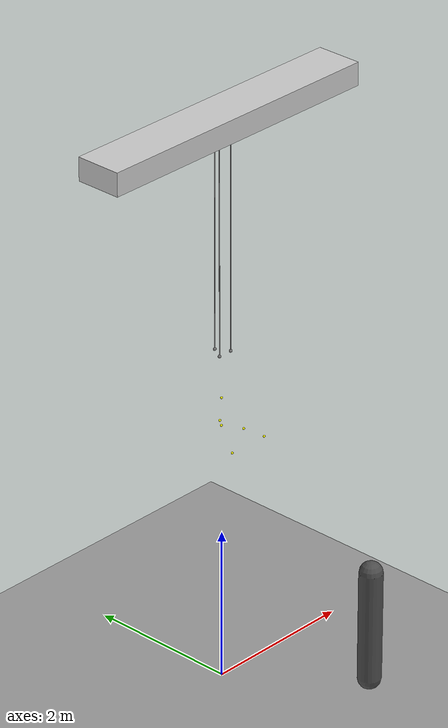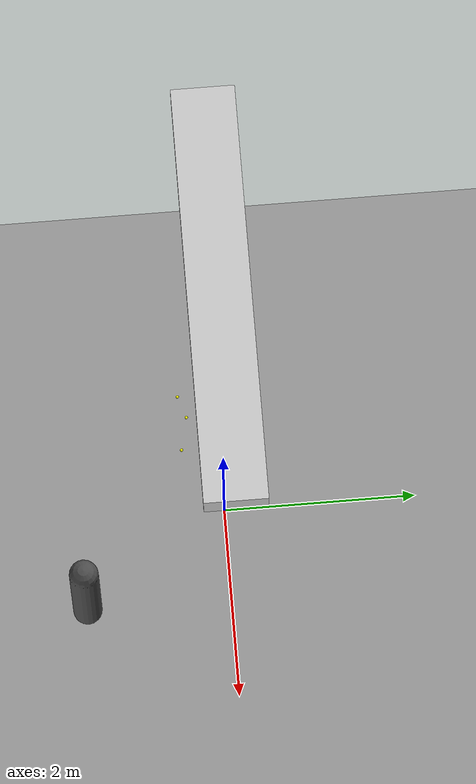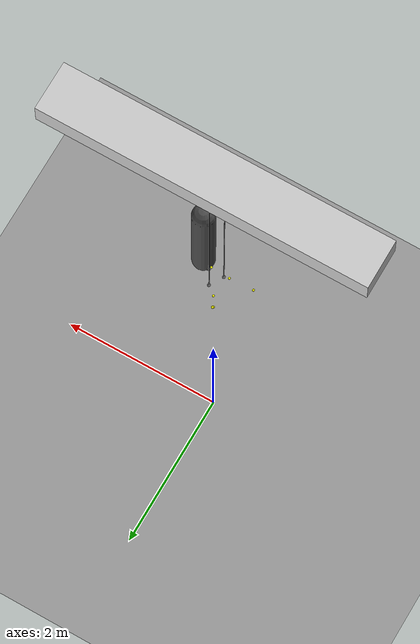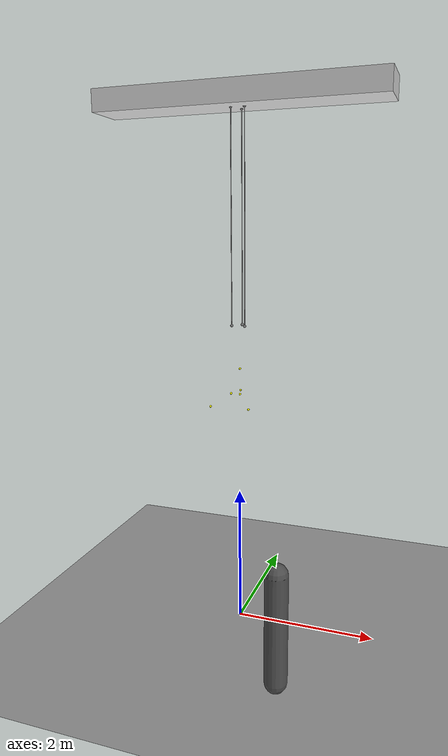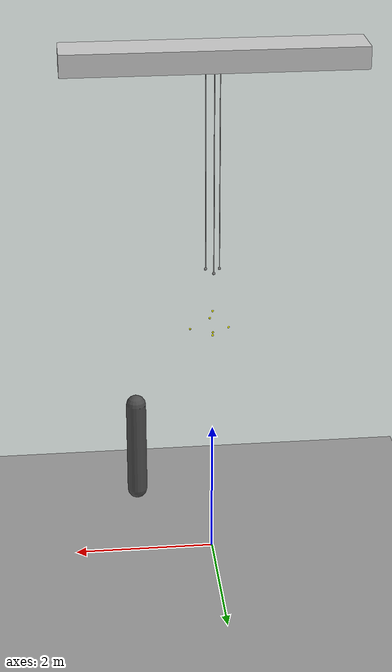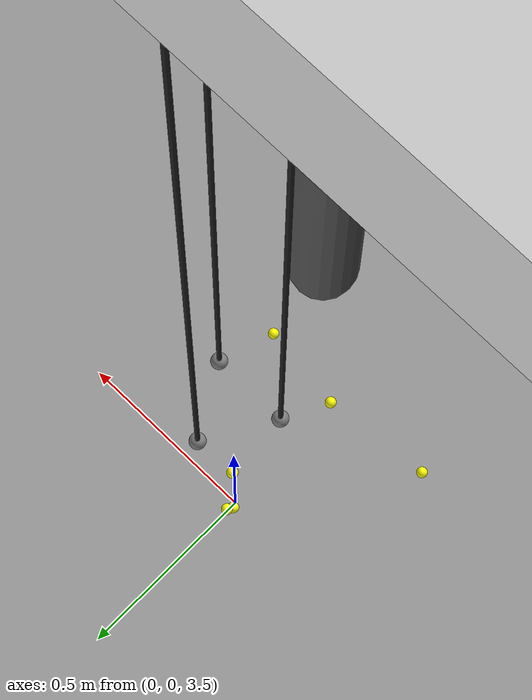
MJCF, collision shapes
<mujoco model="floating_head_1800_wires_R011">
  <compiler angle="radian" meshdir="meshes"/>
  <option timestep="0.0002" gravity="0 0 -9.81" integrator="implicitfast"/>
  <visual><global offwidth="1280" offheight="960"/></visual>
  <asset><mesh name="m_base_0" file="base_0.stl"/><mesh name="m_yaw_0" file="yaw_0.stl"/><mesh name="m_pitch_0" file="pitch_0.stl"/><mesh name="m_eye_pitch_0" file="eye_pitch_0.stl"/><mesh name="m_eye_yaw_l_0" file="eye_yaw_l_0.stl"/><mesh name="m_eye_yaw_r_0" file="eye_yaw_r_0.stl"/></asset>
  <default><geom contype="0" conaffinity="0" density="0"/></default>
  <worldbody>
    <light pos="0 -3 9" dir="0 0.3 -1"/>
    <geom name="floor" type="plane" size="6 6 0.1" rgba="0.6 0.6 0.6 1"/>
    <geom name="beam" type="box" pos="0 0 7.4460" size="2 0.3 0.15" rgba="0.8 0.8 0.8 1"/>
    <geom name="human" type="capsule" fromto="1.0 -1.5 0.15 1.0 -1.5 1.62" size="0.15" rgba="0.3 0.3 0.3 1"/>
    <site name="ceil0" pos="6.73556e-18 0.11 7.296" size="0.02"/>
    <site name="ceil1" pos="-0.0952628 -0.055 7.296" size="0.02"/>
    <site name="ceil2" pos="0.0952628 -0.055 7.296" size="0.02"/>
    <body name="base" pos="0 0 3.2834">
      <inertial pos="0.00192465 0.00416315 0.553989" mass="26.2499" fullinertia="2.05697 2.09189 0.202685 0.000150812 -0.000487465 0.0266854"/>
      <freejoint name="suspension"/>
      <site name="plate0" pos="6.73556e-18 0.11 1.1658" size="0.02"/>
      <site name="plate1" pos="-0.0952628 -0.055 1.1658" size="0.02"/>
      <site name="plate2" pos="0.0952628 -0.055 1.1658" size="0.02"/>
      <geom type="mesh" mesh="m_base_0" rgba="0.4 0.4 0.45 1"/>
      <site name="com_base" pos="0.00192465 0.00416315 0.553989" size="0.015" rgba="1 1 0 1"/>
      <body name="yaw" pos="0 0 0">
        <inertial pos="0.00045566 0.00656782 0.182508" mass="20.7242" fullinertia="0.381776 0.637848 0.344314 -5.87744e-05 -0.00118726 0.031012"/>
        <joint name="neck_yaw" type="hinge" pos="0 0 0.3103" axis="0 0 1" armature="1.06" damping="2" frictionloss="3"/>
        <geom type="mesh" mesh="m_yaw_0" rgba="0.2 0.45 0.85 1"/>
        <site name="com_yaw" pos="0.00045566 0.00656782 0.182508" size="0.015" rgba="1 1 0 1"/>
        <body name="pitch" pos="0 0 0">
          <inertial pos="-0.000346111 0.0305664 0.239522" mass="260.8240" fullinertia="78.6055 72.2324 62.0101 0.0224636 0.00669588 -6.75722"/>
          <joint name="neck_pitch" type="hinge" pos="0 0 0.1688" axis="-1 0 0" armature="2.385" damping="2" frictionloss="3"/>
          <geom type="mesh" mesh="m_pitch_0" rgba="0.85 0.6 0.3 0.55"/>
          <site name="com_pitch" pos="-0.000346111 0.0305664 0.239522" size="0.015" rgba="1 1 0 1"/>
          <body name="eye_pitch" pos="0 0 0">
            <inertial pos="1.44404e-17 -0.354435 0.276964" mass="0.4805" fullinertia="0.000144385 0.013183 0.0130801 6.46589e-10 5.35339e-11 8.57782e-06"/>
            <joint name="eye_pitch" type="hinge" pos="0 -0.3231 0.1571" axis="-1 0 0" armature="0.012" damping="0.02" frictionloss="0.05"/>
            <geom type="mesh" mesh="m_eye_pitch_0" rgba="0.2 0.75 0.3 1"/>
            <site name="com_eye_pitch" pos="1.44404e-17 -0.354435 0.276964" size="0.015" rgba="1 1 0 1"/>
            <body name="eye_yaw_l" pos="0 0 0">
              <inertial pos="0.274943 -0.42669 0.0879208" mass="20.3657" fullinertia="0.113899 0.211567 0.190243 -0.0098111 -0.00653793 0.0237342"/>
              <joint name="eye_yaw_l" type="hinge" pos="0.2625 -0.3231 0.1571" axis="0 -0.559215 0.829023" armature="0.003185" damping="0.02" frictionloss="0.05"/>
              <geom type="mesh" mesh="m_eye_yaw_l_0" rgba="0.85 0.2 0.2 1"/>
              <site name="com_eye_yaw_l" pos="0.274943 -0.42669 0.0879208" size="0.015" rgba="1 1 0 1"/>
            </body>
            <body name="eye_yaw_r" pos="0 0 0">
              <inertial pos="-0.274906 -0.426379 0.088112" mass="20.4744" fullinertia="0.11444 0.211729 0.190642 0.00975694 0.00652101 0.0234956"/>
              <joint name="eye_yaw_r" type="hinge" pos="-0.2625 -0.3231 0.1571" axis="0 -0.559215 0.829023" armature="0.003185" damping="0.02" frictionloss="0.05"/>
              <geom type="mesh" mesh="m_eye_yaw_r_0" rgba="0.85 0.2 0.6 1"/>
              <site name="com_eye_yaw_r" pos="-0.274906 -0.426379 0.088112" size="0.015" rgba="1 1 0 1"/>
            </body>
          </body>
        </body>
      </body>
    </body>
  </worldbody>
  <tendon>
    <spatial name="wire0" limited="true" range="0 2.84730" solreflimit="0.004 1" width="0.006" rgba="0.1 0.1 0.1 1"><site site="ceil0"/><site site="plate0"/></spatial>
    <spatial name="wire1" limited="true" range="0 2.84730" solreflimit="0.004 1" width="0.006" rgba="0.1 0.1 0.1 1"><site site="ceil1"/><site site="plate1"/></spatial>
    <spatial name="wire2" limited="true" range="0 2.84730" solreflimit="0.004 1" width="0.006" rgba="0.1 0.1 0.1 1"><site site="ceil2"/><site site="plate2"/></spatial>
  </tendon>
  <actuator>
    <motor name="act_neck_yaw" joint="neck_yaw" ctrlrange="-644.400 644.400" ctrllimited="true"/>
    <motor name="act_neck_pitch" joint="neck_pitch" ctrlrange="-966.600 966.600" ctrllimited="true"/>
    <motor name="act_eye_pitch" joint="eye_pitch" ctrlrange="-42.750 42.750" ctrllimited="true"/>
    <motor name="act_eye_yaw_l" joint="eye_yaw_l" ctrlrange="-15.120 15.120" ctrllimited="true"/>
    <motor name="act_eye_yaw_r" joint="eye_yaw_r" ctrlrange="-15.120 15.120" ctrllimited="true"/>
  </actuator>
</mujoco>
